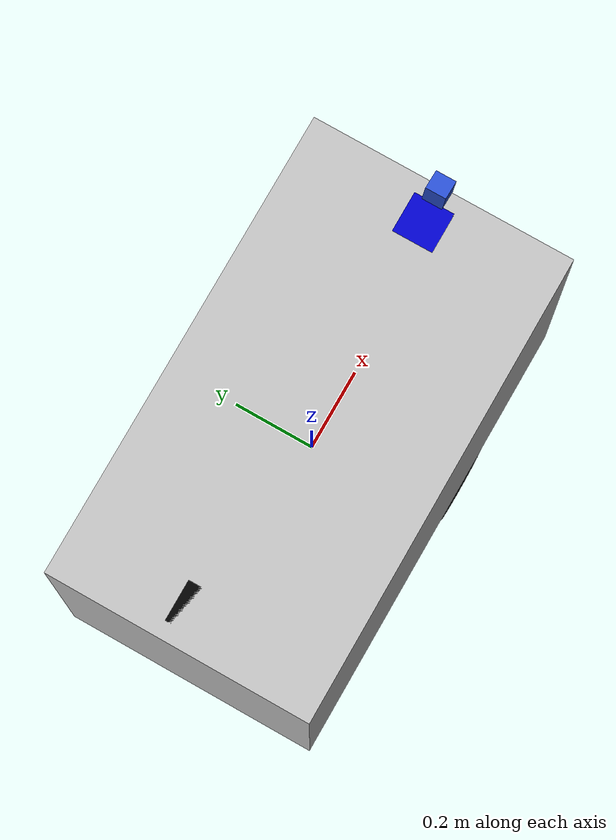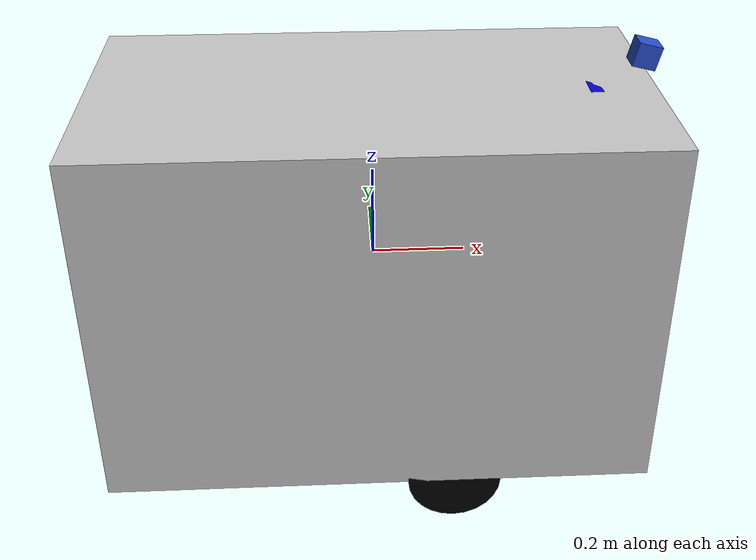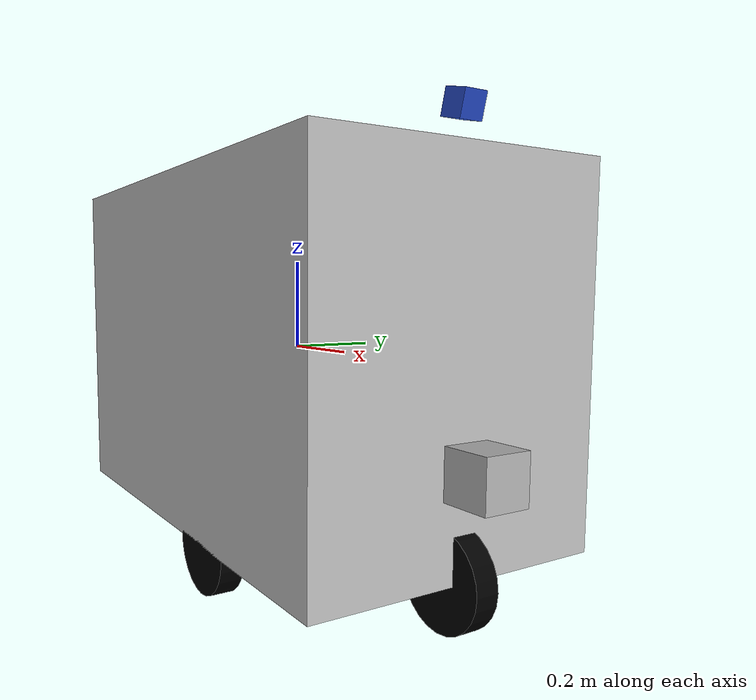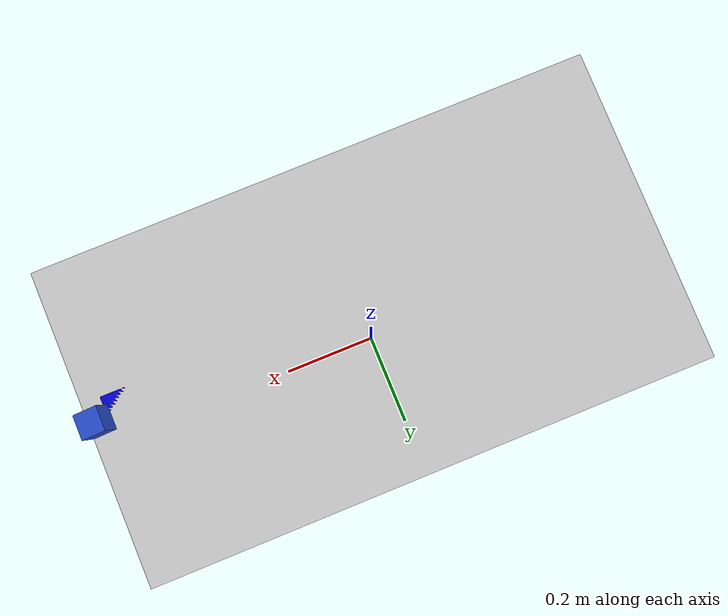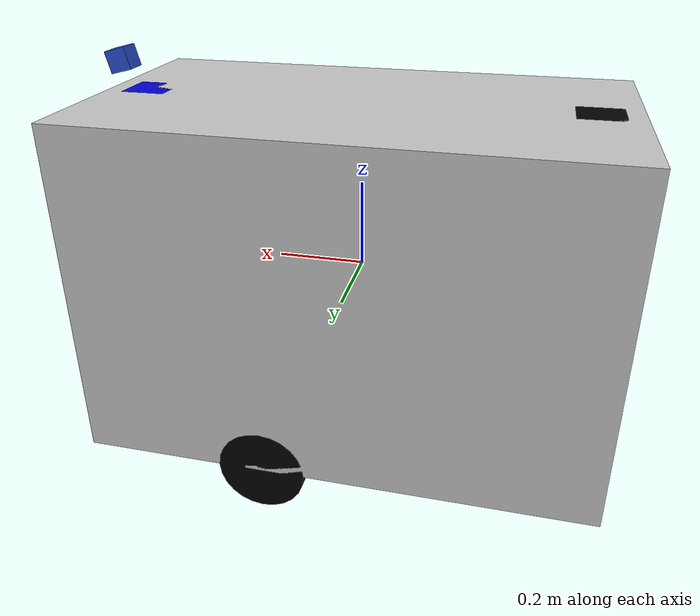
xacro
<?xml version="1.0"?>

<robot name="hermes" xmlns:xacro="http://www.ros.org/wiki/xacro">
<xacro:property name="M_PI" value="3.1415926535897931" />
<xacro:property name="M_PI2" value="-3.1415926535897931" />
 <material name="blue">
    <color rgba="0 0 0.8 1"/>
  </material>
  <material name="black">
    <color rgba="0 0 0 1"/>
  </material>

<link name="base_link">
    <inertial>
      <mass value="1.0" />
      <inertia ixx="0.015" iyy="0.0375" izz="0.0375" ixy="0" ixz="0" iyz="0" />
    </inertial>
    <visual>
      <geometry>
        <box size="1.16195 0.651 0.77596" />
      </geometry>
      <material name="blue">
        <color rgba="0.75 0.75 0.75 1" />
      </material>
    </visual>
    <collision>
      <geometry>
        <box size="0.6 0.3 0.3" />
      </geometry>
    </collision>
  </link>
<link name="back_caster">
    <inertial>
      <mass value="0.1" />
      <inertia ixx="0.00083" iyy="0.00083" izz="0.000167" ixy="0" ixz="0" iyz="0" />
    </inertial>
    <visual>
      <geometry>
        <box size="0.1 0.1 0.77596" />
      </geometry>
      <material name="black" />
    </visual>
    <collision>
      <geometry>
        <box size="0.1 0.1 0.77596" />
      </geometry>
    </collision>
  </link>
  <joint name="back_caster_joint" type="continuous">
    <axis xyz="0 0 1" />
    <parent link="base_link" />
    <child link="back_caster" />
    <origin rpy="0 0 0" xyz="-0.491695 0 0" />
  </joint>
  <link name="back_wheel">
    <inertial>
      <mass value="0.1" />
      <inertia ixx="5.1458e-5" iyy="5.1458e-5" izz="6.125e-5" ixy="0" ixz="0" iyz="0" />
    </inertial>
    <visual>
      <geometry>
        <cylinder length="0.05" radius="0.1" />
      </geometry>
      <material name="black" />
    </visual>
    <collision>
      <geometry>
        <cylinder length="0.05" radius="0.1" />
      </geometry>
    </collision>

  </link>
  <joint name="back_wheel_joint" type="continuous">
    <axis xyz="0 0 1" />
    <parent link="back_caster" />
    <child link="back_wheel" />
    <origin rpy="-1.5708 0 0" xyz="0.05 0 -.38798" />
  </joint>
  <link name="front_caster">
    <inertial>
      <mass value="0.1" />
      <inertia ixx="0.00083" iyy="0.00083" izz="0.000167" ixy="0" ixz="0" iyz="0" />
    </inertial>
    <visual>
      <geometry>
        <box size="0.1 0.1 0.77596" />
      </geometry>
      <material name="blue" />
    </visual>
    <collision>
      <geometry>
        <box size="0.1 0.1 0.77596" />
      </geometry>
    </collision>
  </link>
  <joint name="front_caster_joint" type="continuous">
    <axis xyz="0 0 1" />
    <parent link="base_link" />
    <child link="front_caster" />
    <origin rpy="0 0 0" xyz="0.491695 0 0" />
  </joint>
  <link name="front_wheel">
    <inertial>
      <mass value="0.1" />
      <inertia ixx="5.1458e-5" iyy="5.1458e-5" izz="6.125e-5" ixy="0" ixz="0" iyz="0" />
    </inertial>
    <visual>
      <geometry>
        <cylinder length="0.05" radius="0.1" />
      </geometry>
      <material name="black" />
    </visual>
    <collision>
      <geometry>
        <cylinder length="0.05" radius="0.1" />
      </geometry>
    </collision>

  </link>
  <joint name="front_wheel_joint" type="continuous">
    <axis xyz="0 0 1" />
    <parent link="front_caster" />
    <child link="front_wheel" />
    <origin rpy="-1.5708 0 0" xyz="0.05 0 -.38798" />
  </joint>
  <link name="right_wheel">
    <inertial>
      <mass value="0.1" />
      <inertia ixx="5.1458e-5" iyy="5.1458e-5" izz="6.125e-5" ixy="0" ixz="0" iyz="0" />
    </inertial>
    <visual>
      <geometry>
        <cylinder length="0.05" radius="0.1" />
      </geometry>
      <material name="black">
        <color rgba="0 0 0 1" />
      </material>
    </visual>
    <collision>
      <geometry>
        <cylinder length="0.05" radius="0.1" />
      </geometry>
    </collision>
  </link>
  <joint name="right_wheel_joint" type="continuous">
    <axis xyz="0 0 1" />
    <parent link="base_link" />
    <child link="right_wheel" />
    <origin rpy="-1.5708 0 0" xyz="0.159795 -.3005 -.38798" />
  </joint>
  <link name="left_wheel">
    <inertial>
      <mass value="0.1" />
      <inertia ixx="5.1458e-5" iyy="5.1458e-5" izz="6.125e-5" ixy="0" ixz="0" iyz="0" />
    </inertial>
    <visual>
      <geometry>
        <cylinder length="0.05" radius="0.1" />
      </geometry>
      <material name="black" />
    </visual>
    <collision>
      <geometry>
        <cylinder length="0.05" radius="0.1" />
      </geometry>
    </collision>
  </link>
  <joint name="left_wheel_joint" type="continuous">
    <axis xyz="0 0 1" />
    <parent link="base_link" />
    <child link="left_wheel" />
    <origin rpy="-1.5708 0 0" xyz="0.159795 0.3005 -.38978" />
  </joint>
  <link name="lidar_link">
    <collision>
      <origin xyz="0 0 0" rpy="0 0 0" />
      <geometry>
        <box size="0.1 0.1 0.1" />
      </geometry>
    </collision>
    <visual>
      <origin xyz="0 0 0" rpy="0 0 0" />
      <geometry>
        <box size="0.1 0.1 0.1" />
      </geometry>
    </visual>
    <inertial>
      <mass value="1e-5" />
      <origin xyz="0 0 0" rpy="0 0 0" />
      <inertia ixx="1e-6" ixy="0" ixz="0" iyy="1e-6" iyz="0" izz="1e-6" />
    </inertial>
  </link>
  <joint name="lidar_joint" type="fixed">
    <origin xyz="0.630975 0 -0.18087467" rpy="0 0 0" />
    <parent link="base_link" />
    <child link="lidar_link" />
  </joint>
  <link name="camera_link">
<visual>
<origin rpy="0 0 0" xyz="0 0 0" />
<geometry>
<box size="0.05 0.05 0.05" />
</geometry>
<material name="Blue" />
</visual>
</link>
<joint name="camera_joint" type="fixed">
<origin rpy="0 0.25 0" xyz="0.555975 0 0.45" />
<parent link="base_link" />
<child link="camera_link" />
</joint>
  <gazebo>
    <plugin name="differential_drive_controller" filename="libgazebo_ros_diff_drive.so">
      <leftJoint>left_wheel_joint</leftJoint>
      <odometryTopic>odom</odometryTopic>
      <odometryFrame>odom</odometryFrame>
      <publishWheelTF>false</publishWheelTF>
      <publishOdomTF>true</publishOdomTF>
      <wheelTorque>5</wheelTorque>
      <wheelAcceleration>0</wheelAcceleration>
      <updateRate>100</updateRate>
      <odometrySource>world</odometrySource> <!-- 'encoder' instead of 'world' is also possible -->
      <publishTf>1</publishTf>
      <rosDebugLevel>na</rosDebugLevel>
      <rightJoint>right_wheel_joint</rightJoint>
      <robotBaseFrame>base_link</robotBaseFrame>
      <wheelSeparation>0.25</wheelSeparation>
      <wheelDiameter>0.07</wheelDiameter>
      <publishWheelJointState>true</publishWheelJointState>
      <commandTopic>cmd_vel</commandTopic>
      <robotBaseFrame>base_link</robotBaseFrame>
    </plugin>
  </gazebo>

<gazebo reference="lidar_link">

<sensor type="ray" name="lidar_link">
          <pose>0 0 0 0 0 0</pose>
          <visualize>false</visualize>
          <update_rate>10</update_rate>
          <ray>
            <scan>
              <horizontal>
                <samples>1875</samples>
                <resolution>1</resolution>
                <min_angle>-3</min_angle>
                <max_angle>3</max_angle>
              </horizontal>
              <vertical>
                <samples>16</samples>
                <resolution>1</resolution>
                <min_angle>-0.25</min_angle>
                <max_angle>0.25</max_angle>
              </vertical>
            </scan>
            <range>
              <min>0.3</min>
              <max>131.0</max>
              <resolution>0.001</resolution>
            </range>
            <noise>
              <type>gaussian</type>
              <mean>0.0</mean>
              <stddev>0.0</stddev>
            </noise>
          </ray>
          <plugin name="gazebo_ros_laser_controller" filename="libgazebo_ros_velodyne_laser.so">
            <topicName>/velodyne</topicName>
            <frameName>lidar_link</frameName>
            <min_range>0.9</min_range>
            <max_range>130.0</max_range>
            <gaussianNoise>0.008</gaussianNoise>
          </plugin>
        </sensor>
    </gazebo>

<gazebo reference="camera_link">
<sensor type="camera" name="camera">
<update_rate>30.0</update_rate>
<camera name="head">
<horizontal_fov>1.396</horizontal_fov>
<image>
<width>10000</width>
<height>10000</height>
<format>R8G8B8</format>
</image>
<clip>
<near>0.02</near>
<far>300</far>
</clip>
<noise>
<type>gaussian</type>
<mean>0.0</mean>
<stddev>0.007</stddev>
</noise>
</camera>
<plugin name="camera_controller" filename="libgazebo_ros_camera.so">
<alwaysOn>true</alwaysOn>
<updateRate>0.0</updateRate>
<cameraName>/camera</cameraName>
<imageTopicName>image_raw</imageTopicName>
<cameraInfoTopicName>camera_info</cameraInfoTopicName>
<frameName>camera_link</frameName>
<hackBaseline>0.07</hackBaseline>
<distortionK1>0.0</distortionK1>
<distortionK2>0.0</distortionK2>
<distortionK3>0.0</distortionK3>
<distortionT1>0.0</distortionT1>
<distortionT2>0.0</distortionT2>
</plugin>
</sensor>
</gazebo>

</robot>
